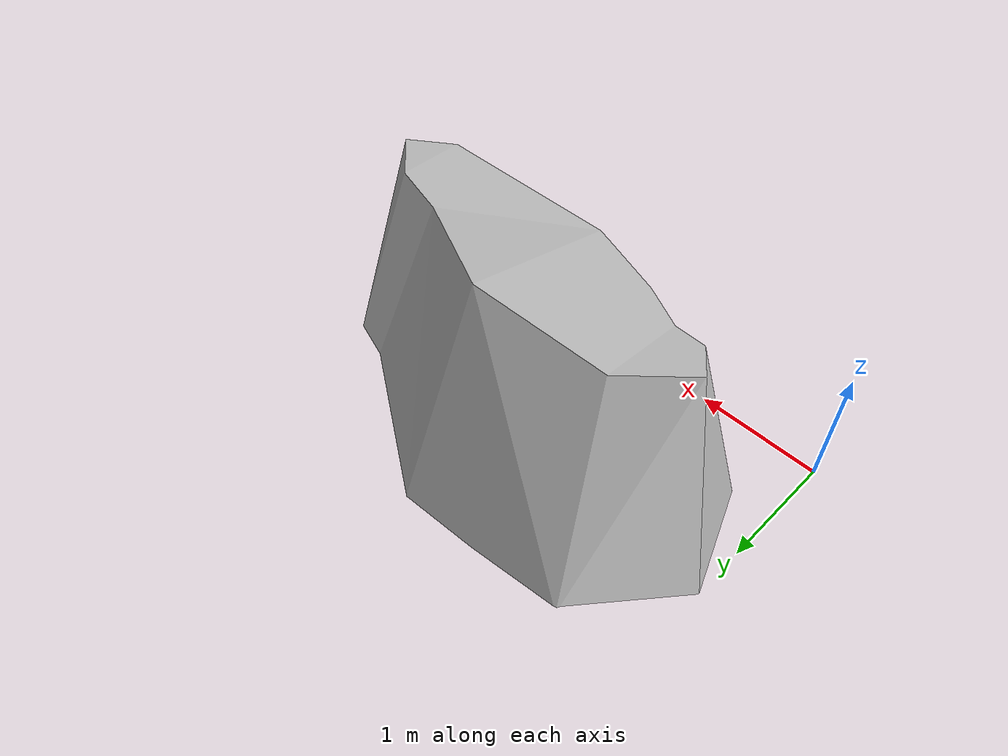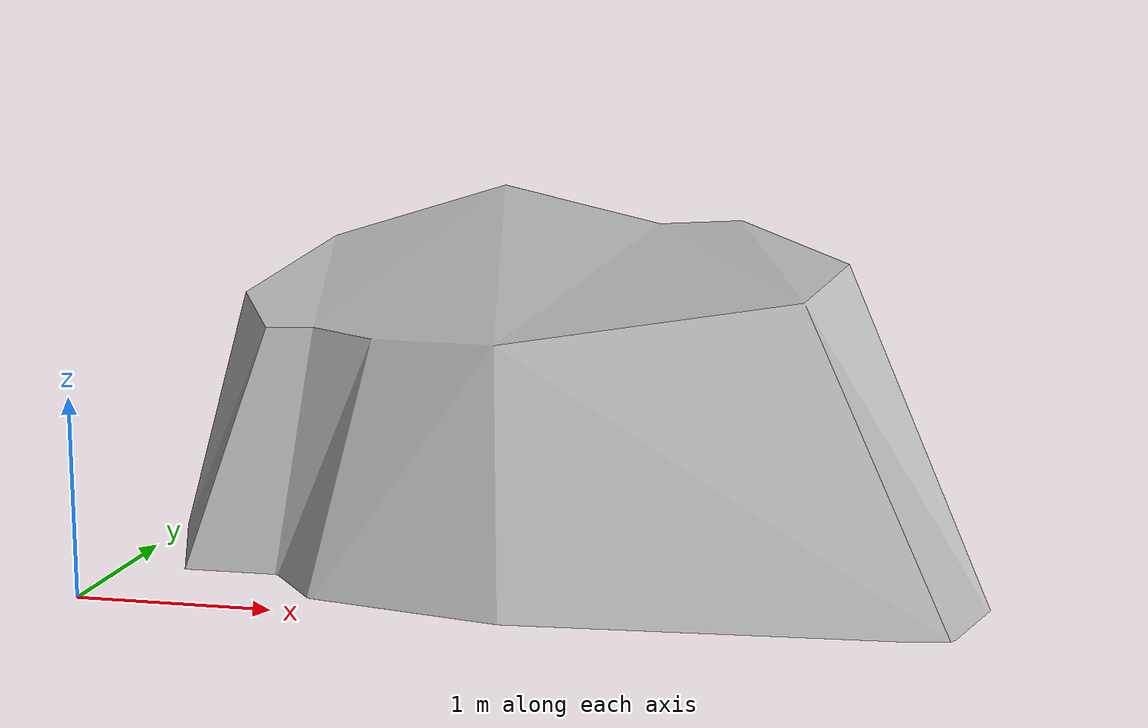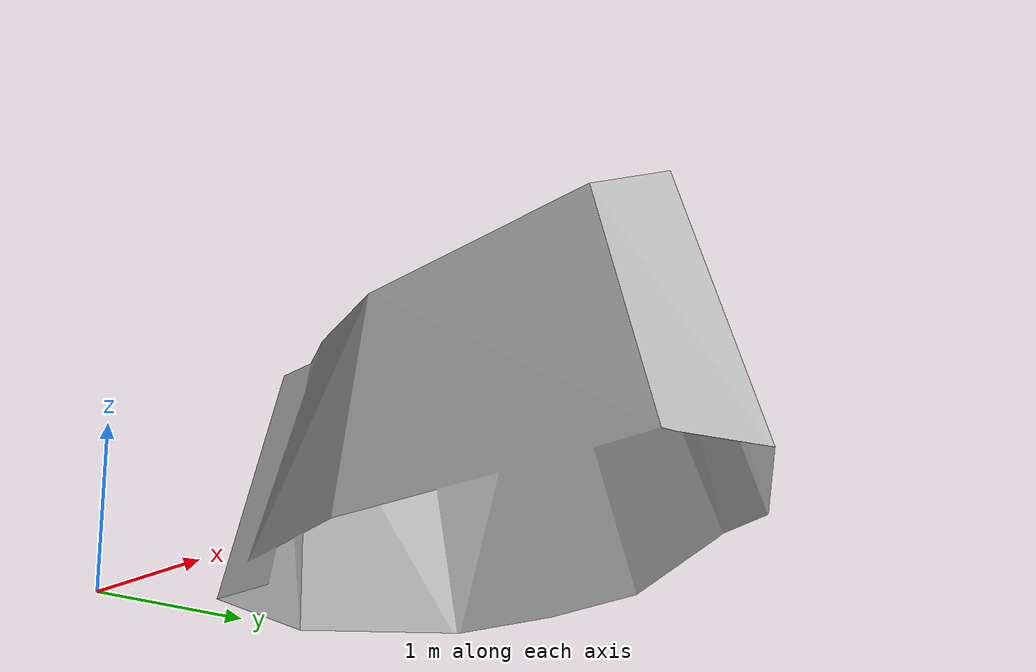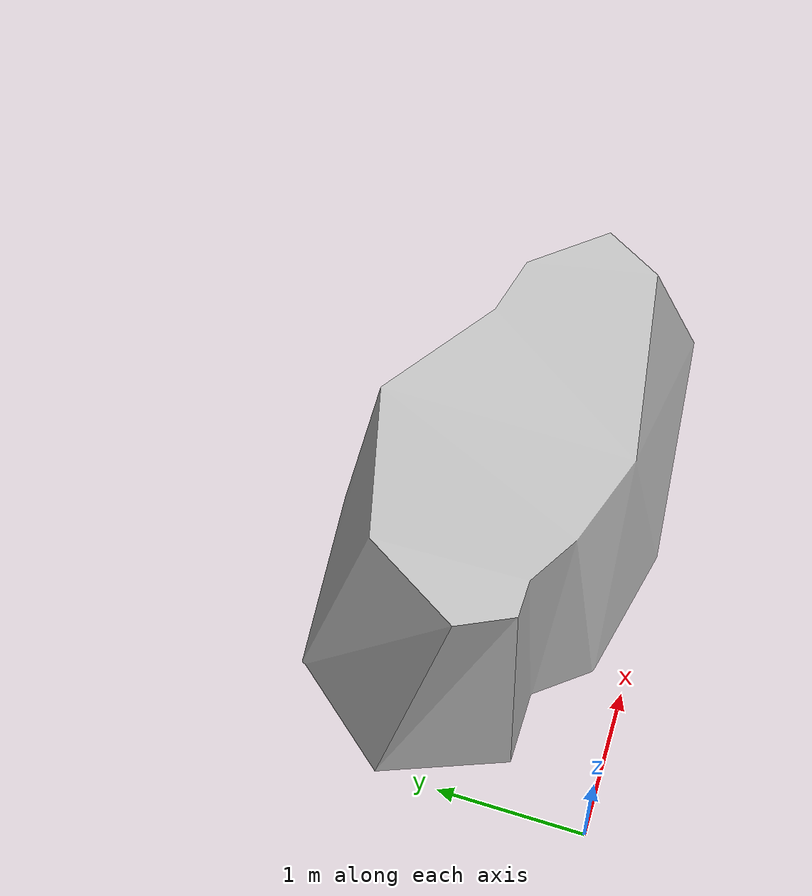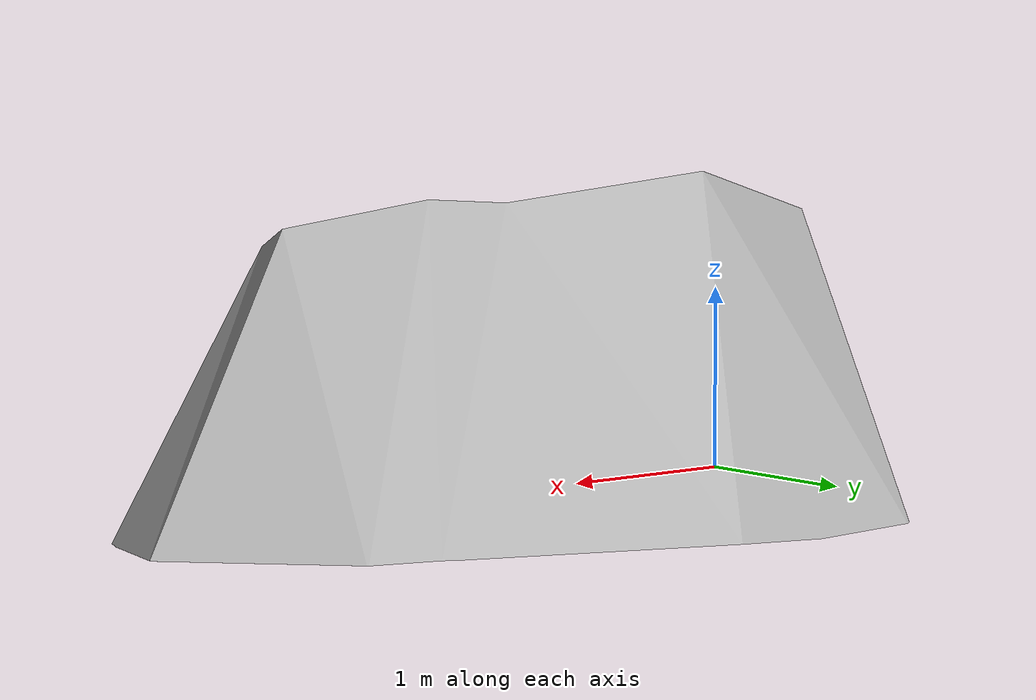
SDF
<?xml version="1.0" ?>
<sdf version="1.5">
  <model name="rock_type1">
    <static>true</static>
    <link name="link">
      <pose>0 0 0 0 0 0</pose>
        <collision name="collision">
        <geometry>
          <mesh>
              <uri>model://rock_type1/meshes/model.dae</uri>
          </mesh>
        </geometry>
      </collision>
      <visual name="visual">
        <cast_shadows>true</cast_shadows>
        <geometry>
          <mesh>
              <uri>model://rock_type1/meshes/model.dae</uri>
          </mesh>
        </geometry>
      </visual>
    </link>
  </model>
</sdf>
